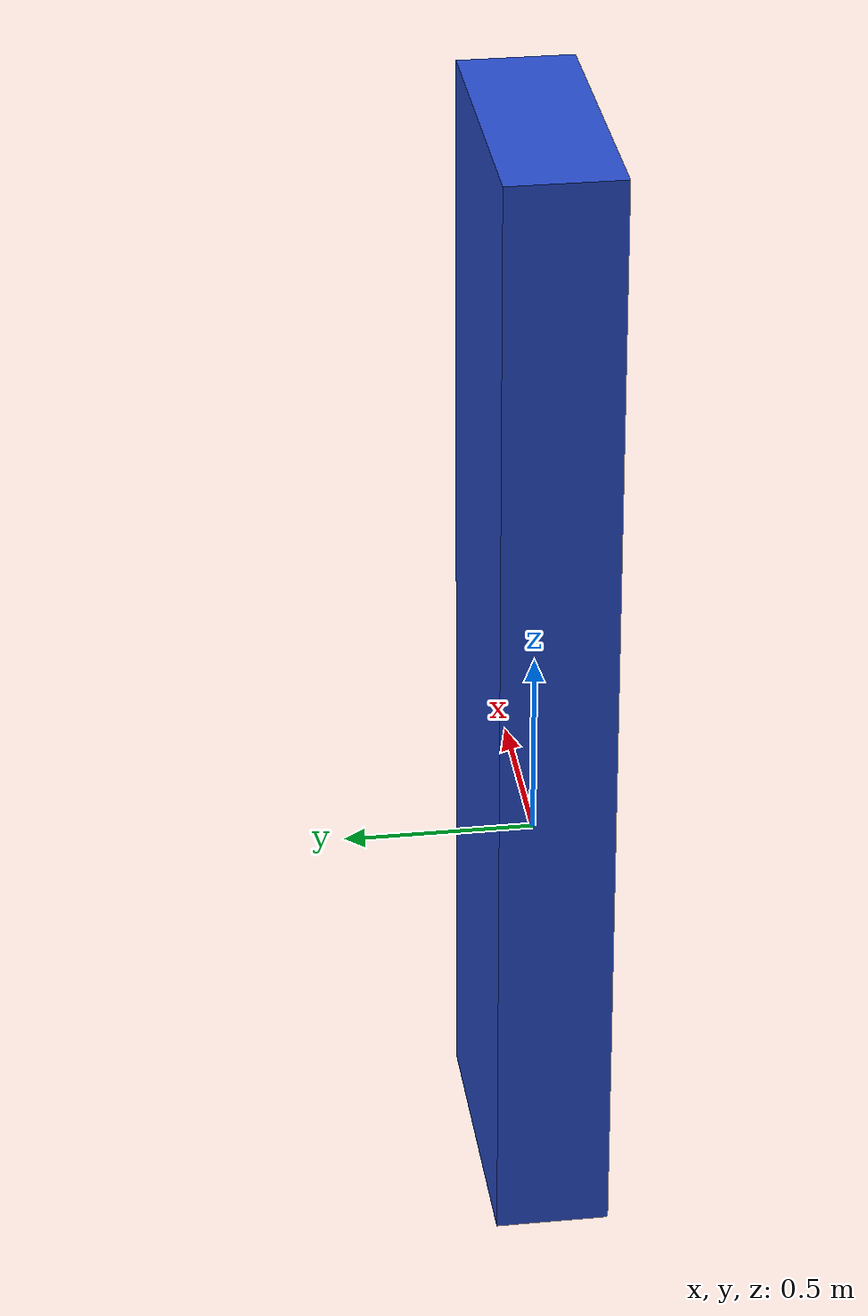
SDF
<sdf version="1.4">
<model name="Door">
    <static>1</static>
    <link name="chassis">
      <pose frame="">0 0 0.5 0 0 0</pose>
      <collision name="collision">
        <geometry>
          <box>
            <size>2 0.5 1</size>
          </box>
        </geometry>
        <max_contacts>10</max_contacts>
        <surface>
          <bounce />
          <friction>
            <ode />
          </friction>
          <contact>
            <ode />
          </contact>
        </surface>
      </collision>
      <visual name="visual">
        <geometry>
          <box>
            <size>0.8 0.3 3</size>
          </box>
        </geometry>
        <material>
          <script>
            <uri>file://media/materials/scripts/gazebo.material</uri>
            <name>Gazebo/Blue</name>
          </script>
        </material>
      </visual>
      <velocity_decay>
        <linear>0</linear>
        <angular>0</angular>
      </velocity_decay>
      <self_collide>0</self_collide>
      <kinematic>0</kinematic>
      <gravity>1</gravity>
    </link>
  </model>
</sdf>
